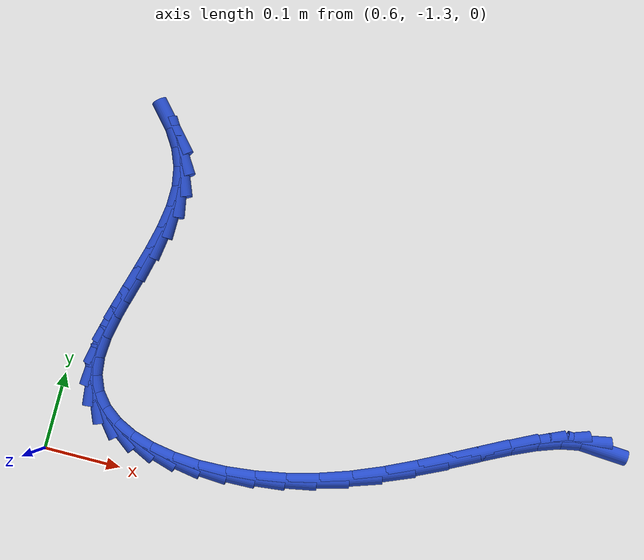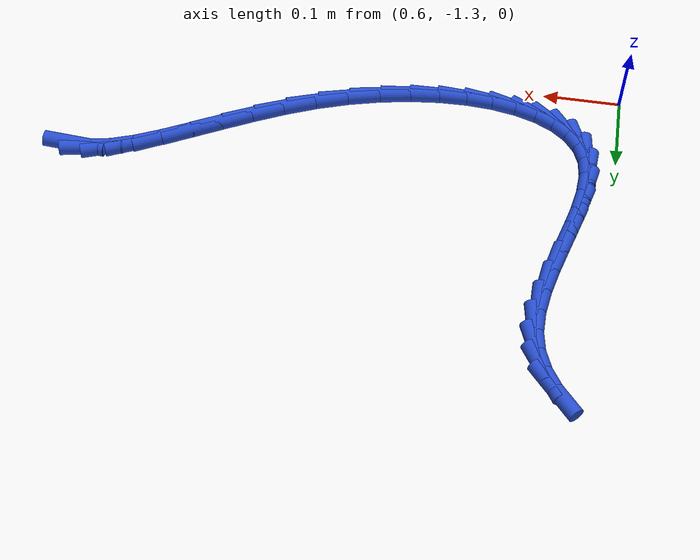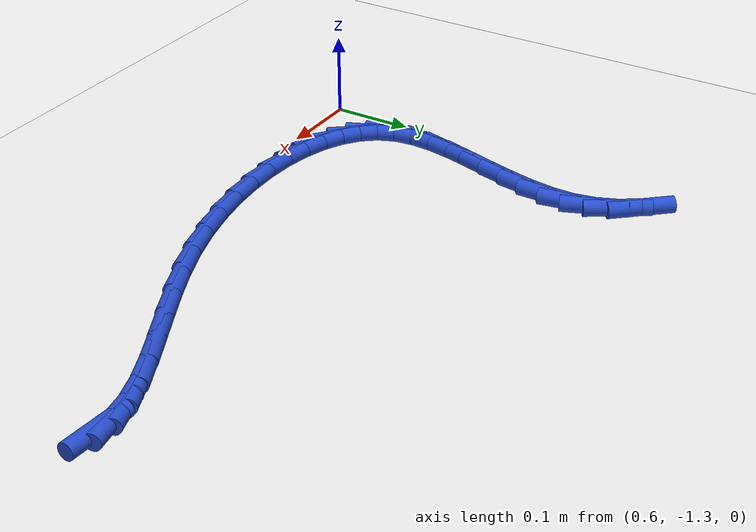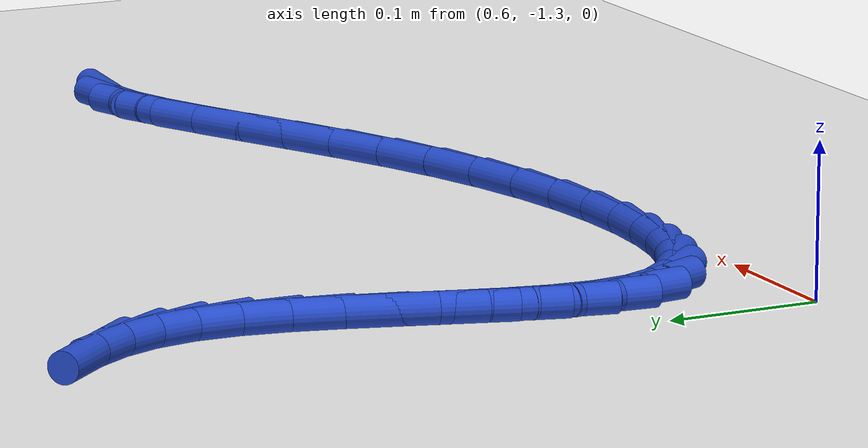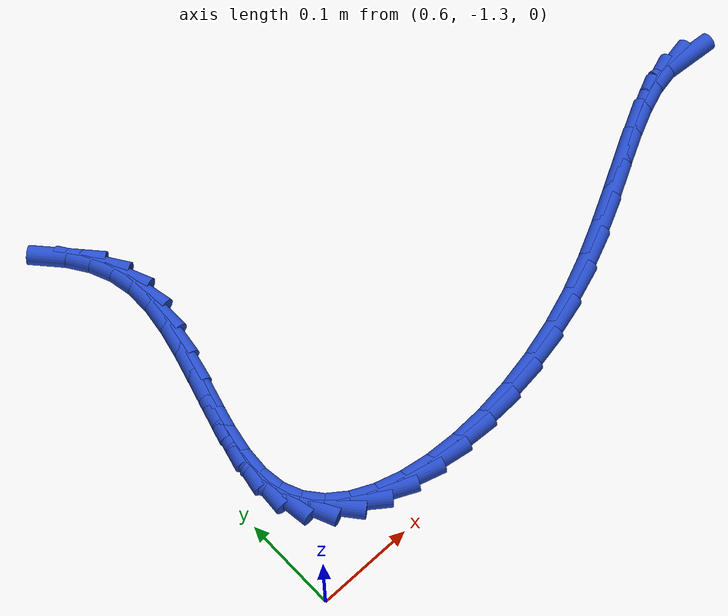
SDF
<sdf version="1.6">
 <world name="default">
  <model name="ground_plane">
   <static>1</static>
   <link name="link">
    <collision name="collision">
     <geometry><plane><normal>0 0 1</normal><size>100 100</size></plane></geometry>
     <surface><friction><ode><mu>100</mu><mu2>50</mu2></ode></friction></surface>
    </collision>
    <visual name="visual">
     <cast_shadows>0</cast_shadows>
     <geometry><plane><normal>0 0 1</normal><size>100 100</size></plane></geometry>
     <material>
      <script><uri>file://media/materials/scripts/gazebo.material</uri><name>Gazebo/WhiteGlow</name></script>
     </material>
    </visual>
   </link>
  </model>
  <model name="line">
   <link name="link_199">
    <pose>1.2873756961517944 -1.1189489399795916 0.01 0 1.57 -0.06744296629205063</pose>
    <collision name="collision">
     <geometry><cylinder><radius>0.01</radius><length>0.08</length></cylinder></geometry>
    </collision>
    <visual name="visual">
     <material>
      <script><name>Gazebo/Blue</name><uri>file://media/materials/scripts/gazebo.material</uri></script>
     </material>
     <geometry><cylinder><radius>0.01</radius><length>0.08</length></cylinder></geometry>
    </visual>
   </link>
   <link name="link_200">
    <pose>1.265213121136692 -1.1174519597930919 0.01 0 1.57 0.19054535683076074</pose>
    <collision name="collision">
     <geometry><cylinder><radius>0.01</radius><length>0.08</length></cylinder></geometry>
    </collision>
    <visual name="visual">
     <material>
      <script><name>Gazebo/Blue</name><uri>file://media/materials/scripts/gazebo.material</uri></script>
     </material>
     <geometry><cylinder><radius>0.01</radius><length>0.08</length></cylinder></geometry>
    </visual>
   </link>
   <link name="link_201">
    <pose>1.2394495367677865 -1.122421379709287 0.01 0 1.57 0.33939345699356827</pose>
    <collision name="collision">
     <geometry><cylinder><radius>0.01</radius><length>0.08</length></cylinder></geometry>
    </collision>
    <visual name="visual">
     <material>
      <script><name>Gazebo/Blue</name><uri>file://media/materials/scripts/gazebo.material</uri></script>
     </material>
     <geometry><cylinder><radius>0.01</radius><length>0.08</length></cylinder></geometry>
    </visual>
   </link>
   <link name="link_202">
    <pose>1.2104845040436254 -1.1326476173099074 0.01 0 1.57 0.42228725483145657</pose>
    <collision name="collision">
     <geometry><cylinder><radius>0.01</radius><length>0.08</length></cylinder></geometry>
    </collision>
    <visual name="visual">
     <material>
      <script><name>Gazebo/Blue</name><uri>file://media/materials/scripts/gazebo.material</uri></script>
     </material>
     <geometry><cylinder><radius>0.01</radius><length>0.08</length></cylinder></geometry>
    </visual>
   </link>
   <link name="link_203">
    <pose>1.1787175839627608 -1.1469210901766829 0.01 0 1.57 0.46426791584800514</pose>
    <collision name="collision">
     <geometry><cylinder><radius>0.01</radius><length>0.08</length></cylinder></geometry>
    </collision>
    <visual name="visual">
     <material>
      <script><name>Gazebo/Blue</name><uri>file://media/materials/scripts/gazebo.material</uri></script>
     </material>
     <geometry><cylinder><radius>0.01</radius><length>0.08</length></cylinder></geometry>
    </visual>
   </link>
   <link name="link_204">
    <pose>1.1445483375237409 -1.1640322158913439 0.01 0 1.57 0.47798933873644445</pose>
    <collision name="collision">
     <geometry><cylinder><radius>0.01</radius><length>0.08</length></cylinder></geometry>
    </collision>
    <visual name="visual">
     <material>
      <script><name>Gazebo/Blue</name><uri>file://media/materials/scripts/gazebo.material</uri></script>
     </material>
     <geometry><cylinder><radius>0.01</radius><length>0.08</length></cylinder></geometry>
    </visual>
   </link>
   <link name="link_205">
    <pose>1.1083763257251142 -1.1827714120356216 0.01 0 1.57 0.46935088254364987</pose>
    <collision name="collision">
     <geometry><cylinder><radius>0.01</radius><length>0.08</length></cylinder></geometry>
    </collision>
    <visual name="visual">
     <material>
      <script><name>Gazebo/Blue</name><uri>file://media/materials/scripts/gazebo.material</uri></script>
     </material>
     <geometry><cylinder><radius>0.01</radius><length>0.08</length></cylinder></geometry>
    </visual>
   </link>
   <link name="link_206">
    <pose>1.0706011095654326 -1.2019290961912454 0.01 0 1.57 0.4403380901438224</pose>
    <collision name="collision">
     <geometry><cylinder><radius>0.01</radius><length>0.08</length></cylinder></geometry>
    </collision>
    <visual name="visual">
     <material>
      <script><name>Gazebo/Blue</name><uri>file://media/materials/scripts/gazebo.material</uri></script>
     </material>
     <geometry><cylinder><radius>0.01</radius><length>0.08</length></cylinder></geometry>
    </visual>
   </link>
   <link name="link_207">
    <pose>1.0316222500432437 -1.2202956859399463 0.01 0 1.57 0.39028884742628833</pose>
    <collision name="collision">
     <geometry><cylinder><radius>0.01</radius><length>0.08</length></cylinder></geometry>
    </collision>
    <visual name="visual">
     <material>
      <script><name>Gazebo/Blue</name><uri>file://media/materials/scripts/gazebo.material</uri></script>
     </material>
     <geometry><cylinder><radius>0.01</radius><length>0.08</length></cylinder></geometry>
    </visual>
   </link>
   <link name="link_208">
    <pose>0.9918393630770598 -1.236662071567449 0.01 0 1.57 0.32310489580798474</pose>
    <collision name="collision">
     <geometry><cylinder><radius>0.01</radius><length>0.08</length></cylinder></geometry>
    </collision>
    <visual name="visual">
     <material>
      <script><name>Gazebo/Blue</name><uri>file://media/materials/scripts/gazebo.material</uri></script>
     </material>
     <geometry><cylinder><radius>0.01</radius><length>0.08</length></cylinder></geometry>
    </visual>
   </link>
   <link name="link_209">
    <pose>0.9516855243379058 -1.250107136260054 0.01 0 1.57 0.2538713482470537</pose>
    <collision name="collision">
     <geometry><cylinder><radius>0.01</radius><length>0.08</length></cylinder></geometry>
    </collision>
    <visual name="visual">
     <material>
      <script><name>Gazebo/Blue</name><uri>file://media/materials/scripts/gazebo.material</uri></script>
     </material>
     <geometry><cylinder><radius>0.01</radius><length>0.08</length></cylinder></geometry>
    </visual>
   </link>
   <link name="link_210">
    <pose>0.9116840312597285 -1.2604863148890613 0.01 0 1.57 0.18356636797583417</pose>
    <collision name="collision">
     <geometry><cylinder><radius>0.01</radius><length>0.08</length></cylinder></geometry>
    </collision>
    <visual name="visual">
     <material>
      <script><name>Gazebo/Blue</name><uri>file://media/materials/scripts/gazebo.material</uri></script>
     </material>
     <geometry><cylinder><radius>0.01</radius><length>0.08</length></cylinder></geometry>
    </visual>
   </link>
   <link name="link_211">
    <pose>0.8723732354369432 -1.267784615649367 0.01 0 1.57 0.109908190999507</pose>
    <collision name="collision">
     <geometry><cylinder><radius>0.01</radius><length>0.08</length></cylinder></geometry>
    </collision>
    <visual name="visual">
     <material>
      <script><name>Gazebo/Blue</name><uri>file://media/materials/scripts/gazebo.material</uri></script>
     </material>
     <geometry><cylinder><radius>0.01</radius><length>0.08</length></cylinder></geometry>
    </visual>
   </link>
   <link name="link_212">
    <pose>0.8342914884639699 -1.271987046735867 0.01 0 1.57 0.030049859953979356</pose>
    <collision name="collision">
     <geometry><cylinder><radius>0.01</radius><length>0.08</length></cylinder></geometry>
    </collision>
    <visual name="visual">
     <material>
      <script><name>Gazebo/Blue</name><uri>file://media/materials/scripts/gazebo.material</uri></script>
     </material>
     <geometry><cylinder><radius>0.01</radius><length>0.08</length></cylinder></geometry>
    </visual>
   </link>
   <link name="link_213">
    <pose>0.7979771419352234 -1.273078616343456 0.01 0 1.57 -0.05974556285777289</pose>
    <collision name="collision">
     <geometry><cylinder><radius>0.01</radius><length>0.08</length></cylinder></geometry>
    </collision>
    <visual name="visual">
     <material>
      <script><name>Gazebo/Blue</name><uri>file://media/materials/scripts/gazebo.material</uri></script>
     </material>
     <geometry><cylinder><radius>0.01</radius><length>0.08</length></cylinder></geometry>
    </visual>
   </link>
   <link name="link_214">
    <pose>0.7639685474451235 -1.271044332667031 0.01 0 1.57 -0.16455689440468133</pose>
    <collision name="collision">
     <geometry><cylinder><radius>0.01</radius><length>0.08</length></cylinder></geometry>
    </collision>
    <visual name="visual">
     <material>
      <script><name>Gazebo/Blue</name><uri>file://media/materials/scripts/gazebo.material</uri></script>
     </material>
     <geometry><cylinder><radius>0.01</radius><length>0.08</length></cylinder></geometry>
    </visual>
   </link>
   <link name="link_215">
    <pose>0.7328040565880864 -1.2658692039014865 0.01 0 1.57 -0.2913364222998889</pose>
    <collision name="collision">
     <geometry><cylinder><radius>0.01</radius><length>0.08</length></cylinder></geometry>
    </collision>
    <visual name="visual">
     <material>
      <script><name>Gazebo/Blue</name><uri>file://media/materials/scripts/gazebo.material</uri></script>
     </material>
     <geometry><cylinder><radius>0.01</radius><length>0.08</length></cylinder></geometry>
    </visual>
   </link>
   <link name="link_216">
    <pose>0.7050220209585291 -1.2575382382417186 0.01 0 1.57 -0.4491673898735798</pose>
    <collision name="collision">
     <geometry><cylinder><radius>0.01</radius><length>0.08</length></cylinder></geometry>
    </collision>
    <visual name="visual">
     <material>
      <script><name>Gazebo/Blue</name><uri>file://media/materials/scripts/gazebo.material</uri></script>
     </material>
     <geometry><cylinder><radius>0.01</radius><length>0.08</length></cylinder></geometry>
    </visual>
   </link>
   <link name="link_217">
    <pose>0.6811607921508704 -1.2460364438826232 0.01 0 1.57 -0.6479741885404338</pose>
    <collision name="collision">
     <geometry><cylinder><radius>0.01</radius><length>0.08</length></cylinder></geometry>
    </collision>
    <visual name="visual">
     <material>
      <script><name>Gazebo/Blue</name><uri>file://media/materials/scripts/gazebo.material</uri></script>
     </material>
     <geometry><cylinder><radius>0.01</radius><length>0.08</length></cylinder></geometry>
    </visual>
   </link>
   <link name="link_218">
    <pose>0.6617587217595265 -1.2313488290190955 0.01 0 1.57 -0.8928655952605881</pose>
    <collision name="collision">
     <geometry><cylinder><radius>0.01</radius><length>0.08</length></cylinder></geometry>
    </collision>
    <visual name="visual">
     <material>
      <script><name>Gazebo/Blue</name><uri>file://media/materials/scripts/gazebo.material</uri></script>
     </material>
     <geometry><cylinder><radius>0.01</radius><length>0.08</length></cylinder></geometry>
    </visual>
   </link>
   <link name="link_219">
    <pose>0.647354161378916 -1.2134604018460318 0.01 0 1.57 -1.1729701147340348</pose>
    <collision name="collision">
     <geometry><cylinder><radius>0.01</radius><length>0.08</length></cylinder></geometry>
    </collision>
    <visual name="visual">
     <material>
      <script><name>Gazebo/Blue</name><uri>file://media/materials/scripts/gazebo.material</uri></script>
     </material>
     <geometry><cylinder><radius>0.01</radius><length>0.08</length></cylinder></geometry>
    </visual>
   </link>
   <link name="link_220">
    <pose>0.6384854626034555 -1.192356170558327 0.01 0 1.57 -1.4464196103516873</pose>
    <collision name="collision">
     <geometry><cylinder><radius>0.01</radius><length>0.08</length></cylinder></geometry>
    </collision>
    <visual name="visual">
     <material>
      <script><name>Gazebo/Blue</name><uri>file://media/materials/scripts/gazebo.material</uri></script>
     </material>
     <geometry><cylinder><radius>0.01</radius><length>0.08</length></cylinder></geometry>
    </visual>
   </link>
   <link name="link_221">
    <pose>0.6354532521461832 -1.1681027674048052 0.01 0 1.57 1.5003267110941434</pose>
    <collision name="collision">
     <geometry><cylinder><radius>0.01</radius><length>0.08</length></cylinder></geometry>
    </collision>
    <visual name="visual">
     <material>
      <script><name>Gazebo/Blue</name><uri>file://media/materials/scripts/gazebo.material</uri></script>
     </material>
     <geometry><cylinder><radius>0.01</radius><length>0.08</length></cylinder></geometry>
    </visual>
   </link>
   <link name="link_222">
    <pose>0.6373536068568444 -1.1411804129908354 0.01 0 1.57 1.381632243166751</pose>
    <collision name="collision">
     <geometry><cylinder><radius>0.01</radius><length>0.08</length></cylinder></geometry>
    </collision>
    <visual name="visual">
     <material>
      <script><name>Gazebo/Blue</name><uri>file://media/materials/scripts/gazebo.material</uri></script>
     </material>
     <geometry><cylinder><radius>0.01</radius><length>0.08</length></cylinder></geometry>
    </visual>
   </link>
   <link name="link_223">
    <pose>0.6429019957772499 -1.1122000115593604 0.01 0 1.57 1.3164099017651072</pose>
    <collision name="collision">
     <geometry><cylinder><radius>0.01</radius><length>0.08</length></cylinder></geometry>
    </collision>
    <visual name="visual">
     <material>
      <script><name>Gazebo/Blue</name><uri>file://media/materials/scripts/gazebo.material</uri></script>
     </material>
     <geometry><cylinder><radius>0.01</radius><length>0.08</length></cylinder></geometry>
    </visual>
   </link>
   <link name="link_224">
    <pose>0.6508137407573352 -1.0817725178924038 0.01 0 1.57 1.290783607827513</pose>
    <collision name="collision">
     <geometry><cylinder><radius>0.01</radius><length>0.08</length></cylinder></geometry>
    </collision>
    <visual name="visual">
     <material>
      <script><name>Gazebo/Blue</name><uri>file://media/materials/scripts/gazebo.material</uri></script>
     </material>
     <geometry><cylinder><radius>0.01</radius><length>0.08</length></cylinder></geometry>
    </visual>
   </link>
   <link name="link_225">
    <pose>0.6598041636470349 -1.0505088867719932 0.01 0 1.57 1.298743343352169</pose>
    <collision name="collision">
     <geometry><cylinder><radius>0.01</radius><length>0.08</length></cylinder></geometry>
    </collision>
    <visual name="visual">
     <material>
      <script><name>Gazebo/Blue</name><uri>file://media/materials/scripts/gazebo.material</uri></script>
     </material>
     <geometry><cylinder><radius>0.01</radius><length>0.08</length></cylinder></geometry>
    </visual>
   </link>
   <link name="link_226">
    <pose>0.6685885862962848 -1.0190200729801526 0.01 0 1.57 1.3404557836901678</pose>
    <collision name="collision">
     <geometry><cylinder><radius>0.01</radius><length>0.08</length></cylinder></geometry>
    </collision>
    <visual name="visual">
     <material>
      <script><name>Gazebo/Blue</name><uri>file://media/materials/scripts/gazebo.material</uri></script>
     </material>
     <geometry><cylinder><radius>0.01</radius><length>0.08</length></cylinder></geometry>
    </visual>
   </link>
   <link name="link_227">
    <pose>0.6758823305550202 -0.9879170312989062 0.01 0 1.57 1.4218271011814296</pose>
    <collision name="collision">
     <geometry><cylinder><radius>0.01</radius><length>0.08</length></cylinder></geometry>
    </collision>
    <visual name="visual">
     <material>
      <script><name>Gazebo/Blue</name><uri>file://media/materials/scripts/gazebo.material</uri></script>
     </material>
     <geometry><cylinder><radius>0.01</radius><length>0.08</length></cylinder></geometry>
    </visual>
   </link>
   <link name="link_228">
    <pose>0.6804007182731763 -0.9578107165102816 0.01 0 1.57 1.5547143796175793</pose>
    <collision name="collision">
     <geometry><cylinder><radius>0.01</radius><length>0.08</length></cylinder></geometry>
    </collision>
    <visual name="visual">
     <material>
      <script><name>Gazebo/Blue</name><uri>file://media/materials/scripts/gazebo.material</uri></script>
     </material>
     <geometry><cylinder><radius>0.01</radius><length>0.08</length></cylinder></geometry>
    </visual>
   </link>
   <link name="link_229">
    <pose>0.6808590713006879 -0.929312083396302 0.01 0 1.57 -1.3948682806957955</pose>
    <collision name="collision">
     <geometry><cylinder><radius>0.01</radius><length>0.08</length></cylinder></geometry>
    </collision>
    <visual name="visual">
     <material>
      <script><name>Gazebo/Blue</name><uri>file://media/materials/scripts/gazebo.material</uri></script>
     </material>
     <geometry><cylinder><radius>0.01</radius><length>0.08</length></cylinder></geometry>
    </visual>
   </link>
   <link name="link_230">
    <pose>0.6761713355664655 -0.9029417980117957 0.01 0 1.57 -1.1891589310159136</pose>
    <collision name="collision">
     <geometry><cylinder><radius>0.01</radius><length>0.08</length></cylinder></geometry>
    </collision>
    <visual name="visual">
     <material>
      <script><name>Gazebo/Blue</name><uri>file://media/materials/scripts/gazebo.material</uri></script>
     </material>
     <geometry><cylinder><radius>0.01</radius><length>0.08</length></cylinder></geometry>
    </visual>
   </link>
   <link name="link_231">
    <pose>0.6664356622809496 -0.8786822211458675 0.01 0 1.57 -1.0035571954297553</pose>
    <collision name="collision">
     <geometry><cylinder><radius>0.01</radius><length>0.08</length></cylinder></geometry>
    </collision>
    <visual name="visual">
     <material>
      <script><name>Gazebo/Blue</name><uri>file://media/materials/scripts/gazebo.material</uri></script>
     </material>
     <geometry><cylinder><radius>0.01</radius><length>0.08</length></cylinder></geometry>
    </visual>
   </link>
   <link name="link_232">
    <pose>0.6521872495370978 -0.8563170447910103 0.01 0 1.57 -0.8485873825186561</pose>
    <collision name="collision">
     <geometry><cylinder><radius>0.01</radius><length>0.08</length></cylinder></geometry>
    </collision>
    <visual name="visual">
     <material>
      <script><name>Gazebo/Blue</name><uri>file://media/materials/scripts/gazebo.material</uri></script>
     </material>
     <geometry><cylinder><radius>0.01</radius><length>0.08</length></cylinder></geometry>
    </visual>
   </link>
  </model>
 </world>
</sdf>
